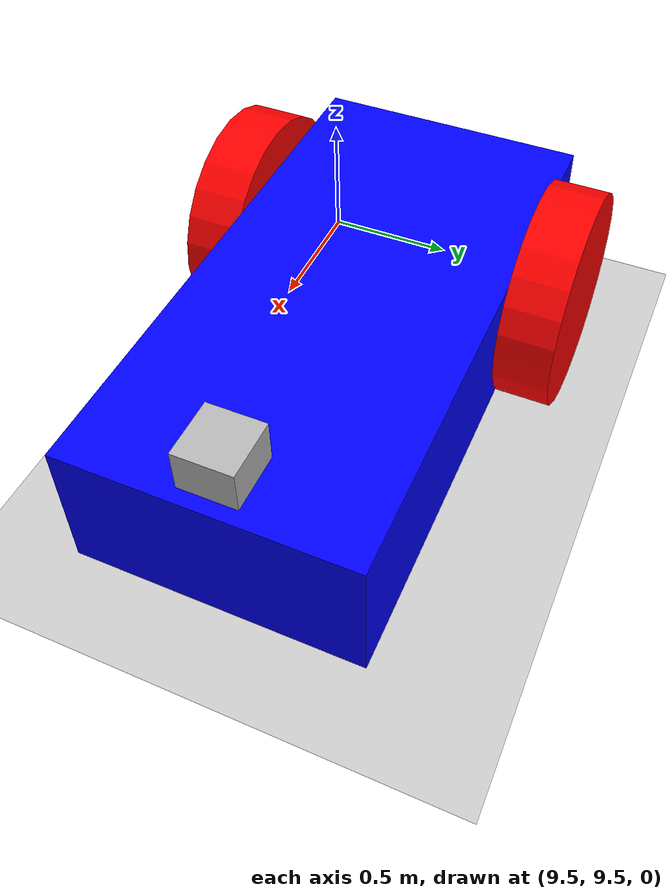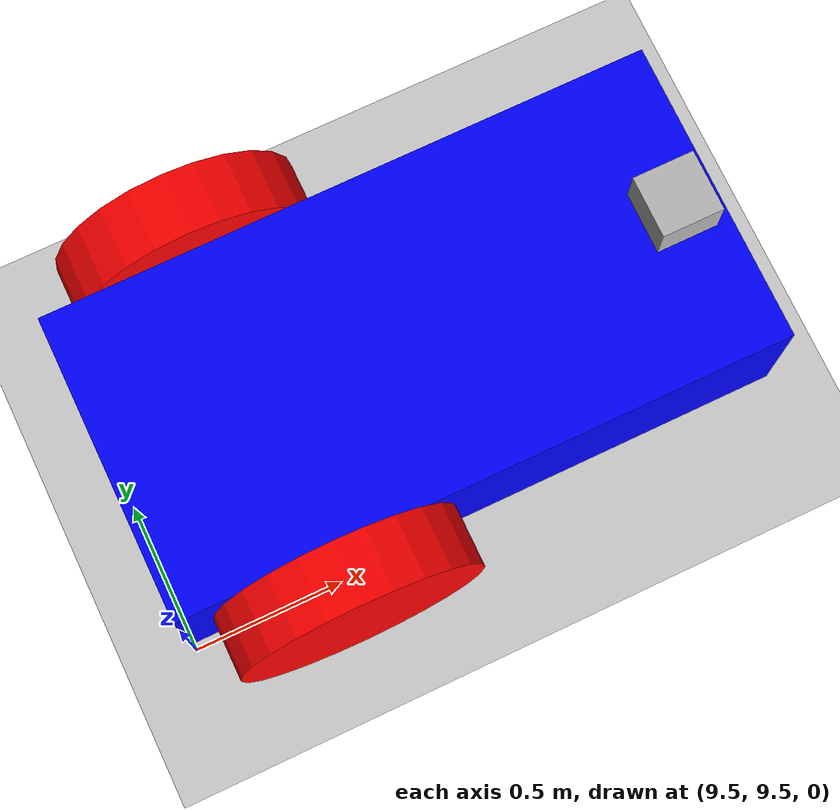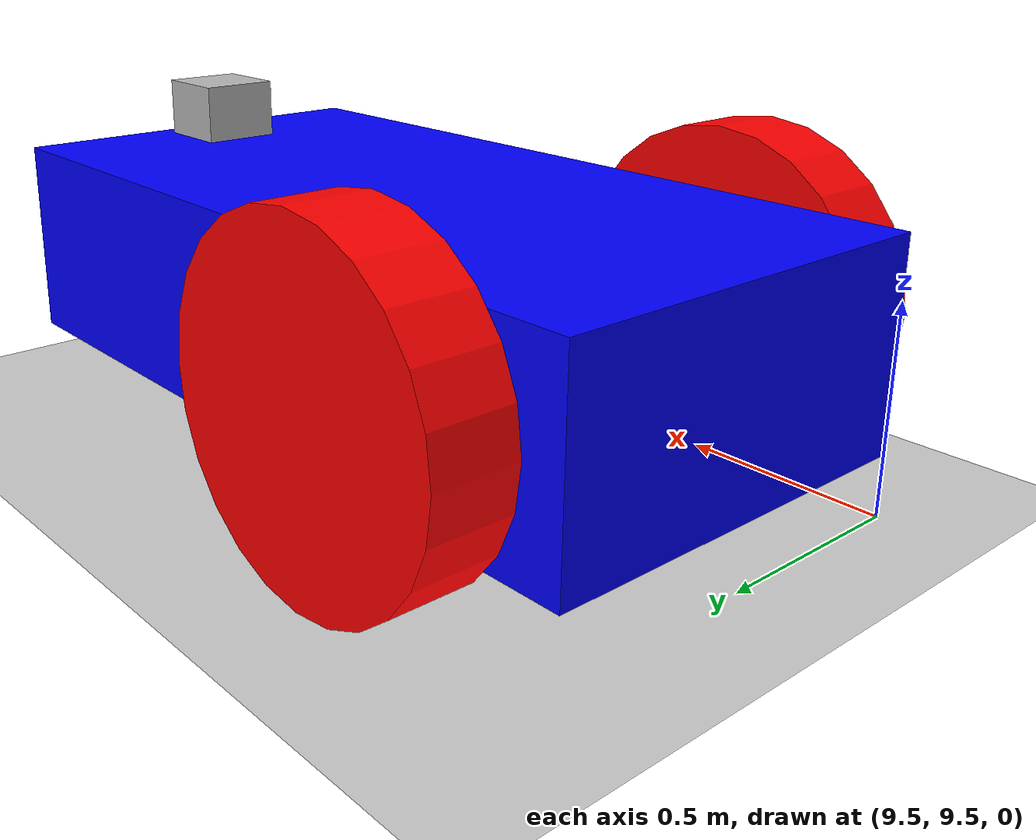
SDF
<sdf version="1.8">
 <world name="Moving_robot">
  <physics name="1ms" type="ignored">
   <max_step_size>0.001</max_step_size>
   <real_time_factor>1.0</real_time_factor>
  </physics>
  <plugin filename="libignition-gazebo-physics-system.so" name="ignition::gazebo::systems::Physics"/>
  <plugin filename="libignition-gazebo-user-commands-system.so" name="ignition::gazebo::systems::UserCommands"/>
  <plugin filename="libignition-gazebo-scene-broadcaster-system.so" name="ignition::gazebo::systems::SceneBroadcaster"/>
  <plugin name="ignition::gazebo::systems::Sensors" filename="libignition-gazebo-sensors-system.so"/>
  <light type="directional" name="sun">
   <pose>0 0 10 0 0 0</pose>
   <diffuse>0.8 0.8 0.8 1</diffuse>
   <specular>0.2 0.2 0.2 1</specular>
   <attenuation>
    <range>1000</range>
    <constant>0.9</constant>
    <linear>0.01</linear>
    <quadratic>0.001</quadratic>
   </attenuation>
   <direction>-0.5 0.1 -0.9</direction>
  </light>
  <model name="ground_plane">
   <static>true</static>
   <link name="link">
    <collision name="collision"><geometry><plane><normal>0 0 1</normal></plane></geometry></collision>
    <visual name="visual">
     <geometry><plane><normal>0 0 1</normal><size>100 100</size></plane></geometry>
     <material>
      <ambient>0.8 0.8 0.8 1</ambient>
      <diffuse>0.8 0.8 0.8 1</diffuse>
      <specular>0.8 0.8 0.8 1</specular>
     </material>
    </visual>
   </link>
  </model>
  <model name="vehicle_blue" canonical_link="chassis">
   <pose relative_to="world">10 10 0 0 0 0</pose>
   <link name="chassis">
    <pose relative_to="__model__">0.5 0 0.4 0 0 0</pose>
    <inertial>
     <mass>1.14395</mass>
     <inertia>
      <ixx>0.126164</ixx>
      <ixy>0</ixy>
      <ixz>0</ixz>
      <iyy>0.416519</iyy>
      <iyz>0</iyz>
      <izz>0.481014</izz>
     </inertia>
    </inertial>
    <visual name="visual">
     <geometry><box><size>2.0 1.0 0.5</size></box></geometry>
     <material>
      <ambient>0.0 0.0 1.0 1</ambient>
      <diffuse>0.0 0.0 1.0 1</diffuse>
      <specular>0.0 0.0 1.0 1</specular>
     </material>
    </visual>
    <collision name="collision"><geometry><box><size>2.0 1.0 0.5</size></box></geometry></collision>
   </link>
   <link name="camera_link">
    <pose relative_to="chassis">0.85 0 0.3 0 0 0</pose>
    <collision name="collision"><geometry><box><size>0.2 0.2 0.2</size></box></geometry></collision>
    <visual name="visual"><geometry><box><size>0.2 0.2 0.2</size></box></geometry></visual>
   </link>
   <link name="left_wheel">
    <pose relative_to="chassis">-0.5 0.6 0 -1.5707 0 0</pose>
    <inertial>
     <mass>2</mass>
     <inertia><ixx>0.145833</ixx><ixy>0</ixy><ixz>0</ixz><iyy>0.145833</iyy><iyz>0</iyz><izz>0.125</izz></inertia>
    </inertial>
    <visual name="visual">
     <geometry><cylinder><radius>0.4</radius><length>0.2</length></cylinder></geometry>
     <material>
      <ambient>1.0 0.0 0.0 1</ambient>
      <diffuse>1.0 0.0 0.0 1</diffuse>
      <specular>1.0 0.0 0.0 1</specular>
     </material>
    </visual>
    <collision name="collision">
     <geometry><cylinder><radius>0.4</radius><length>0.2</length></cylinder></geometry>
    </collision>
   </link>
   <link name="right_wheel">
    <pose relative_to="chassis">-0.5 -0.6 0 -1.5707 0 0</pose>
    <inertial>
     <mass>1</mass>
     <inertia><ixx>0.145833</ixx><ixy>0</ixy><ixz>0</ixz><iyy>0.145833</iyy><iyz>0</iyz><izz>0.125</izz></inertia>
    </inertial>
    <visual name="visual">
     <geometry><cylinder><radius>0.4</radius><length>0.2</length></cylinder></geometry>
     <material>
      <ambient>1.0 0.0 0.0 1</ambient>
      <diffuse>1.0 0.0 0.0 1</diffuse>
      <specular>1.0 0.0 0.0 1</specular>
     </material>
    </visual>
    <collision name="collision">
     <geometry><cylinder><radius>0.4</radius><length>0.2</length></cylinder></geometry>
    </collision>
   </link>
   <frame name="caster_frame" attached_to="chassis"><pose>0.8 0 -0.2 0 0 0</pose></frame>
   <link name="caster">
    <pose relative_to="caster_frame"/>
    <inertial>
     <mass>1</mass>
     <inertia><ixx>0.1</ixx><ixy>0</ixy><ixz>0</ixz><iyy>0.1</iyy><iyz>0</iyz><izz>0.1</izz></inertia>
    </inertial>
    <visual name="visual">
     <geometry><sphere><radius>0.2</radius></sphere></geometry>
     <material>
      <ambient>0.0 1 0.0 1</ambient>
      <diffuse>0.0 1 0.0 1</diffuse>
      <specular>0.0 1 0.0 1</specular>
     </material>
    </visual>
    <collision name="collision"><geometry><sphere><radius>0.2</radius></sphere></geometry></collision>
   </link>
   <joint name="camera_joint" type="fixed">
    <pose relative_to="camera_link"/>
    <parent>chassis</parent>
    <child>camera_link</child>
   </joint>
   <joint name="left_wheel_joint" type="revolute">
    <pose relative_to="left_wheel"/>
    <parent>chassis</parent>
    <child>left_wheel</child>
    <axis>
     <xyz expressed_in="__model__">0 1 0</xyz>
     <limit><lower>-1.79769e+308</lower><upper>1.79769e+308</upper></limit>
    </axis>
   </joint>
   <joint name="right_wheel_joint" type="revolute">
    <pose relative_to="right_wheel"/>
    <parent>chassis</parent>
    <child>right_wheel</child>
    <axis>
     <xyz expressed_in="__model__">0 1 0</xyz>
     <limit><lower>-1.79769e+308</lower><upper>1.79769e+308</upper></limit>
    </axis>
   </joint>
   <joint name="caster_wheel" type="ball"><parent>chassis</parent><child>caster</child></joint>
   <ros2_control name="IgnitionSystem" type="system">
    <hardware><plugin>ign_ros2_control/IgnitionSystem</plugin></hardware>
    <joint name="left_wheel_joint">
     <command_interface name="velocity"><param name="min">-1</param><param name="max">1</param></command_interface>
     <state_interface name="position"/>
     <state_interface name="velocity"/>
    </joint>
    <joint name="right_wheel_joint">
     <command_interface name="velocity"><param name="min">-1</param><param name="max">1</param></command_interface>
     <state_interface name="position"/>
     <state_interface name="velocity"/>
    </joint>
   </ros2_control>
   <plugin filename="ign_ros2_control-system" name="ign_ros2_control::IgnitionROS2ControlPlugin">
    <parameters>$(find simulation)/config/diff_drive_controller.yaml</parameters>
   </plugin>
  </model>
  <plugin filename="libignition-gazebo-triggered-publisher-system.so" name="ignition::gazebo::systems::TriggeredPublisher">
   <input type="ignition.msgs.Int32" topic="/keyboard/keypress"><match field="data">16777235</match></input>
   <output type="ignition.msgs.Twist" topic="/cmd_vel">linear: {x: 0.5}, angular: {z: 0.0}</output>
  </plugin>
  <plugin filename="libignition-gazebo-triggered-publisher-system.so" name="ignition::gazebo::systems::TriggeredPublisher">
   <input type="ignition.msgs.Int32" topic="/keyboard/keypress"><match field="data">16777237</match></input>
   <output type="ignition.msgs.Twist" topic="/cmd_vel">linear: {x: -0.5}, angular: {z: 0.0}</output>
  </plugin>
  <plugin filename="libignition-gazebo-triggered-publisher-system.so" name="ignition::gazebo::systems::TriggeredPublisher">
   <input type="ignition.msgs.Int32" topic="/keyboard/keypress"><match field="data">16777236</match></input>
   <output type="ignition.msgs.Twist" topic="/cmd_vel">linear: {x: 0.0}, angular: {z: -0.5}</output>
  </plugin>
  <plugin filename="libignition-gazebo-triggered-publisher-system.so" name="ignition::gazebo::systems::TriggeredPublisher">
   <input type="ignition.msgs.Int32" topic="/keyboard/keypress"><match field="data">16777234</match></input>
   <output type="ignition.msgs.Twist" topic="/cmd_vel">linear: {x: 0.0}, angular: {z: 0.5}</output>
  </plugin>
 </world>
</sdf>
